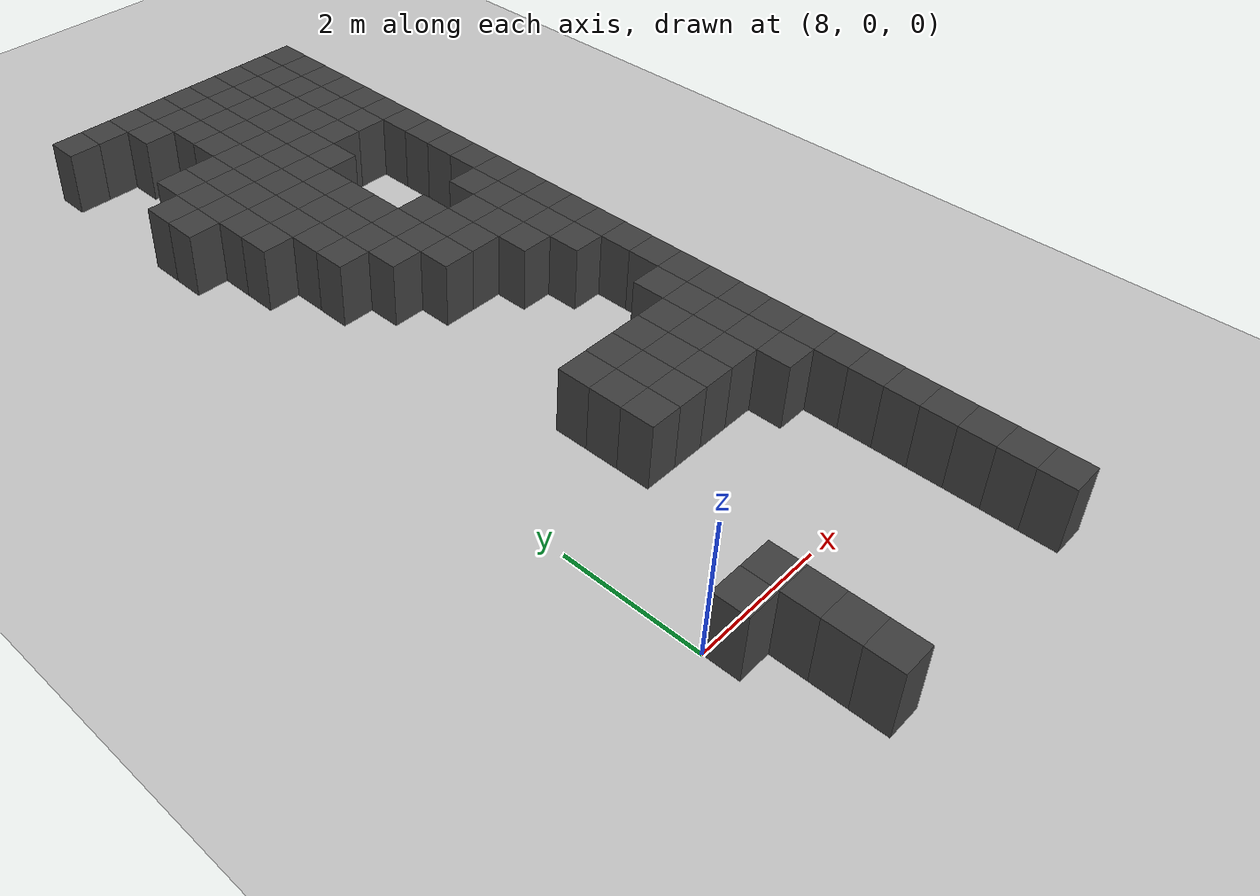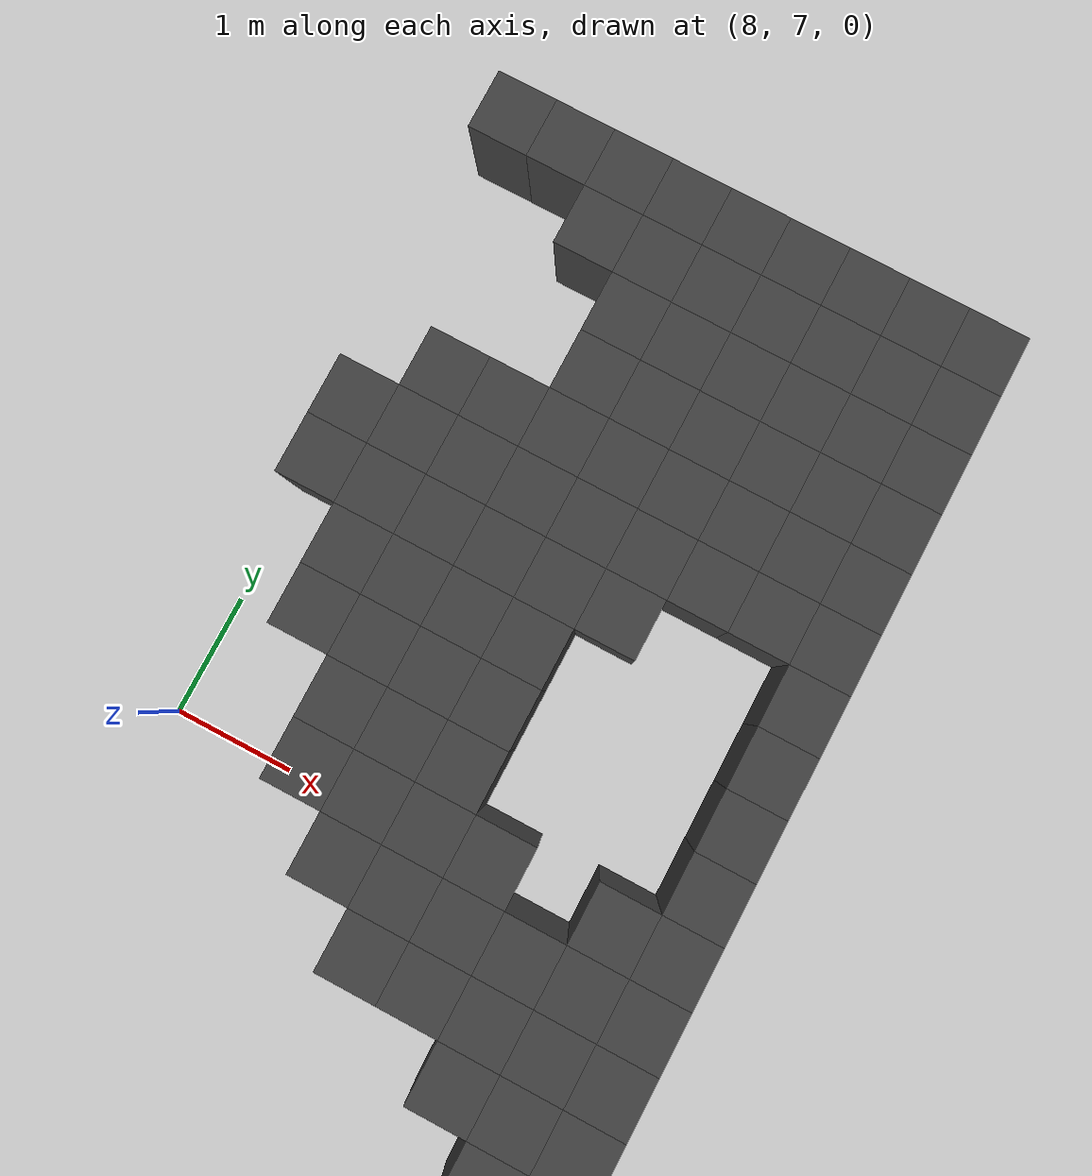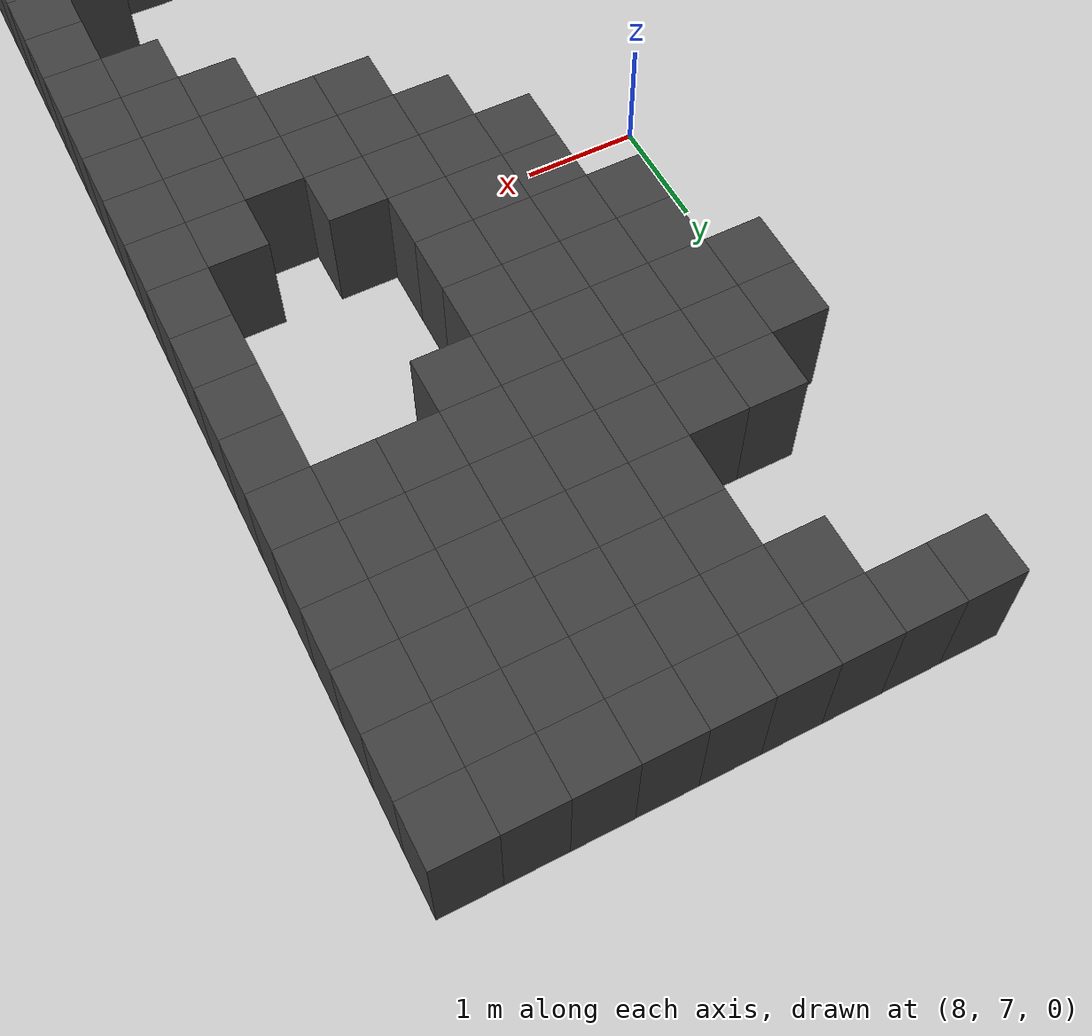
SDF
<sdf version="1.7">
 <world name="map_8382">
  <model name="ground_plane">
   <static>true</static>
   <link name="link">
    <collision name="collision">
     <geometry><plane><normal>0 0 1</normal><size>200 200</size></plane></geometry>
    </collision>
    <visual name="visual">
     <geometry><plane><normal>0 0 1</normal><size>200 200</size></plane></geometry>
     <material><ambient>0.8 0.8 0.8 1</ambient><diffuse>0.8 0.8 0.8 1</diffuse></material>
    </visual>
   </link>
  </model>
  <model name="maze_environment">
   <static>true</static>
   <link name="wall_41">
    <pose>8.250 12.250 0.500 0 0 0</pose>
    <collision name="col"><geometry><box><size>0.5 0.5 1.0</size></box></geometry></collision>
    <visual name="vis">
     <geometry><box><size>0.5 0.5 1.0</size></box></geometry>
     <material><ambient>0.15 0.15 0.15 1</ambient><diffuse>0.25 0.25 0.25 1</diffuse></material>
    </visual>
   </link>
   <link name="wall_42">
    <pose>8.750 12.250 0.500 0 0 0</pose>
    <collision name="col"><geometry><box><size>0.5 0.5 1.0</size></box></geometry></collision>
    <visual name="vis">
     <geometry><box><size>0.5 0.5 1.0</size></box></geometry>
     <material><ambient>0.15 0.15 0.15 1</ambient><diffuse>0.25 0.25 0.25 1</diffuse></material>
    </visual>
   </link>
   <link name="wall_43">
    <pose>9.250 12.250 0.500 0 0 0</pose>
    <collision name="col"><geometry><box><size>0.5 0.5 1.0</size></box></geometry></collision>
    <visual name="vis">
     <geometry><box><size>0.5 0.5 1.0</size></box></geometry>
     <material><ambient>0.15 0.15 0.15 1</ambient><diffuse>0.25 0.25 0.25 1</diffuse></material>
    </visual>
   </link>
   <link name="wall_44">
    <pose>9.750 12.250 0.500 0 0 0</pose>
    <collision name="col"><geometry><box><size>0.5 0.5 1.0</size></box></geometry></collision>
    <visual name="vis">
     <geometry><box><size>0.5 0.5 1.0</size></box></geometry>
     <material><ambient>0.15 0.15 0.15 1</ambient><diffuse>0.25 0.25 0.25 1</diffuse></material>
    </visual>
   </link>
   <link name="wall_45">
    <pose>10.250 12.250 0.500 0 0 0</pose>
    <collision name="col"><geometry><box><size>0.5 0.5 1.0</size></box></geometry></collision>
    <visual name="vis">
     <geometry><box><size>0.5 0.5 1.0</size></box></geometry>
     <material><ambient>0.15 0.15 0.15 1</ambient><diffuse>0.25 0.25 0.25 1</diffuse></material>
    </visual>
   </link>
   <link name="wall_46">
    <pose>10.750 12.250 0.500 0 0 0</pose>
    <collision name="col"><geometry><box><size>0.5 0.5 1.0</size></box></geometry></collision>
    <visual name="vis">
     <geometry><box><size>0.5 0.5 1.0</size></box></geometry>
     <material><ambient>0.15 0.15 0.15 1</ambient><diffuse>0.25 0.25 0.25 1</diffuse></material>
    </visual>
   </link>
   <link name="wall_47">
    <pose>11.250 12.250 0.500 0 0 0</pose>
    <collision name="col"><geometry><box><size>0.5 0.5 1.0</size></box></geometry></collision>
    <visual name="vis">
     <geometry><box><size>0.5 0.5 1.0</size></box></geometry>
     <material><ambient>0.15 0.15 0.15 1</ambient><diffuse>0.25 0.25 0.25 1</diffuse></material>
    </visual>
   </link>
   <link name="wall_48">
    <pose>11.750 12.250 0.500 0 0 0</pose>
    <collision name="col"><geometry><box><size>0.5 0.5 1.0</size></box></geometry></collision>
    <visual name="vis">
     <geometry><box><size>0.5 0.5 1.0</size></box></geometry>
     <material><ambient>0.15 0.15 0.15 1</ambient><diffuse>0.25 0.25 0.25 1</diffuse></material>
    </visual>
   </link>
   <link name="wall_49">
    <pose>12.250 12.250 0.500 0 0 0</pose>
    <collision name="col"><geometry><box><size>0.5 0.5 1.0</size></box></geometry></collision>
    <visual name="vis">
     <geometry><box><size>0.5 0.5 1.0</size></box></geometry>
     <material><ambient>0.15 0.15 0.15 1</ambient><diffuse>0.25 0.25 0.25 1</diffuse></material>
    </visual>
   </link>
   <link name="wall_67">
    <pose>9.250 11.750 0.500 0 0 0</pose>
    <collision name="col"><geometry><box><size>0.5 0.5 1.0</size></box></geometry></collision>
    <visual name="vis">
     <geometry><box><size>0.5 0.5 1.0</size></box></geometry>
     <material><ambient>0.15 0.15 0.15 1</ambient><diffuse>0.25 0.25 0.25 1</diffuse></material>
    </visual>
   </link>
   <link name="wall_68">
    <pose>9.750 11.750 0.500 0 0 0</pose>
    <collision name="col"><geometry><box><size>0.5 0.5 1.0</size></box></geometry></collision>
    <visual name="vis">
     <geometry><box><size>0.5 0.5 1.0</size></box></geometry>
     <material><ambient>0.15 0.15 0.15 1</ambient><diffuse>0.25 0.25 0.25 1</diffuse></material>
    </visual>
   </link>
   <link name="wall_69">
    <pose>10.250 11.750 0.500 0 0 0</pose>
    <collision name="col"><geometry><box><size>0.5 0.5 1.0</size></box></geometry></collision>
    <visual name="vis">
     <geometry><box><size>0.5 0.5 1.0</size></box></geometry>
     <material><ambient>0.15 0.15 0.15 1</ambient><diffuse>0.25 0.25 0.25 1</diffuse></material>
    </visual>
   </link>
   <link name="wall_70">
    <pose>10.750 11.750 0.500 0 0 0</pose>
    <collision name="col"><geometry><box><size>0.5 0.5 1.0</size></box></geometry></collision>
    <visual name="vis">
     <geometry><box><size>0.5 0.5 1.0</size></box></geometry>
     <material><ambient>0.15 0.15 0.15 1</ambient><diffuse>0.25 0.25 0.25 1</diffuse></material>
    </visual>
   </link>
   <link name="wall_71">
    <pose>11.250 11.750 0.500 0 0 0</pose>
    <collision name="col"><geometry><box><size>0.5 0.5 1.0</size></box></geometry></collision>
    <visual name="vis">
     <geometry><box><size>0.5 0.5 1.0</size></box></geometry>
     <material><ambient>0.15 0.15 0.15 1</ambient><diffuse>0.25 0.25 0.25 1</diffuse></material>
    </visual>
   </link>
   <link name="wall_72">
    <pose>11.750 11.750 0.500 0 0 0</pose>
    <collision name="col"><geometry><box><size>0.5 0.5 1.0</size></box></geometry></collision>
    <visual name="vis">
     <geometry><box><size>0.5 0.5 1.0</size></box></geometry>
     <material><ambient>0.15 0.15 0.15 1</ambient><diffuse>0.25 0.25 0.25 1</diffuse></material>
    </visual>
   </link>
   <link name="wall_73">
    <pose>12.250 11.750 0.500 0 0 0</pose>
    <collision name="col"><geometry><box><size>0.5 0.5 1.0</size></box></geometry></collision>
    <visual name="vis">
     <geometry><box><size>0.5 0.5 1.0</size></box></geometry>
     <material><ambient>0.15 0.15 0.15 1</ambient><diffuse>0.25 0.25 0.25 1</diffuse></material>
    </visual>
   </link>
   <link name="wall_83">
    <pose>9.750 11.250 0.500 0 0 0</pose>
    <collision name="col"><geometry><box><size>0.5 0.5 1.0</size></box></geometry></collision>
    <visual name="vis">
     <geometry><box><size>0.5 0.5 1.0</size></box></geometry>
     <material><ambient>0.15 0.15 0.15 1</ambient><diffuse>0.25 0.25 0.25 1</diffuse></material>
    </visual>
   </link>
   <link name="wall_84">
    <pose>10.250 11.250 0.500 0 0 0</pose>
    <collision name="col"><geometry><box><size>0.5 0.5 1.0</size></box></geometry></collision>
    <visual name="vis">
     <geometry><box><size>0.5 0.5 1.0</size></box></geometry>
     <material><ambient>0.15 0.15 0.15 1</ambient><diffuse>0.25 0.25 0.25 1</diffuse></material>
    </visual>
   </link>
   <link name="wall_85">
    <pose>10.750 11.250 0.500 0 0 0</pose>
    <collision name="col"><geometry><box><size>0.5 0.5 1.0</size></box></geometry></collision>
    <visual name="vis">
     <geometry><box><size>0.5 0.5 1.0</size></box></geometry>
     <material><ambient>0.15 0.15 0.15 1</ambient><diffuse>0.25 0.25 0.25 1</diffuse></material>
    </visual>
   </link>
   <link name="wall_86">
    <pose>11.250 11.250 0.500 0 0 0</pose>
    <collision name="col"><geometry><box><size>0.5 0.5 1.0</size></box></geometry></collision>
    <visual name="vis">
     <geometry><box><size>0.5 0.5 1.0</size></box></geometry>
     <material><ambient>0.15 0.15 0.15 1</ambient><diffuse>0.25 0.25 0.25 1</diffuse></material>
    </visual>
   </link>
   <link name="wall_87">
    <pose>11.750 11.250 0.500 0 0 0</pose>
    <collision name="col"><geometry><box><size>0.5 0.5 1.0</size></box></geometry></collision>
    <visual name="vis">
     <geometry><box><size>0.5 0.5 1.0</size></box></geometry>
     <material><ambient>0.15 0.15 0.15 1</ambient><diffuse>0.25 0.25 0.25 1</diffuse></material>
    </visual>
   </link>
   <link name="wall_88">
    <pose>12.250 11.250 0.500 0 0 0</pose>
    <collision name="col"><geometry><box><size>0.5 0.5 1.0</size></box></geometry></collision>
    <visual name="vis">
     <geometry><box><size>0.5 0.5 1.0</size></box></geometry>
     <material><ambient>0.15 0.15 0.15 1</ambient><diffuse>0.25 0.25 0.25 1</diffuse></material>
    </visual>
   </link>
   <link name="wall_95">
    <pose>9.750 10.750 0.500 0 0 0</pose>
    <collision name="col"><geometry><box><size>0.5 0.5 1.0</size></box></geometry></collision>
    <visual name="vis">
     <geometry><box><size>0.5 0.5 1.0</size></box></geometry>
     <material><ambient>0.15 0.15 0.15 1</ambient><diffuse>0.25 0.25 0.25 1</diffuse></material>
    </visual>
   </link>
   <link name="wall_96">
    <pose>10.250 10.750 0.500 0 0 0</pose>
    <collision name="col"><geometry><box><size>0.5 0.5 1.0</size></box></geometry></collision>
    <visual name="vis">
     <geometry><box><size>0.5 0.5 1.0</size></box></geometry>
     <material><ambient>0.15 0.15 0.15 1</ambient><diffuse>0.25 0.25 0.25 1</diffuse></material>
    </visual>
   </link>
   <link name="wall_97">
    <pose>10.750 10.750 0.500 0 0 0</pose>
    <collision name="col"><geometry><box><size>0.5 0.5 1.0</size></box></geometry></collision>
    <visual name="vis">
     <geometry><box><size>0.5 0.5 1.0</size></box></geometry>
     <material><ambient>0.15 0.15 0.15 1</ambient><diffuse>0.25 0.25 0.25 1</diffuse></material>
    </visual>
   </link>
   <link name="wall_98">
    <pose>11.250 10.750 0.500 0 0 0</pose>
    <collision name="col"><geometry><box><size>0.5 0.5 1.0</size></box></geometry></collision>
    <visual name="vis">
     <geometry><box><size>0.5 0.5 1.0</size></box></geometry>
     <material><ambient>0.15 0.15 0.15 1</ambient><diffuse>0.25 0.25 0.25 1</diffuse></material>
    </visual>
   </link>
   <link name="wall_99">
    <pose>11.750 10.750 0.500 0 0 0</pose>
    <collision name="col"><geometry><box><size>0.5 0.5 1.0</size></box></geometry></collision>
    <visual name="vis">
     <geometry><box><size>0.5 0.5 1.0</size></box></geometry>
     <material><ambient>0.15 0.15 0.15 1</ambient><diffuse>0.25 0.25 0.25 1</diffuse></material>
    </visual>
   </link>
   <link name="wall_100">
    <pose>12.250 10.750 0.500 0 0 0</pose>
    <collision name="col"><geometry><box><size>0.5 0.5 1.0</size></box></geometry></collision>
    <visual name="vis">
     <geometry><box><size>0.5 0.5 1.0</size></box></geometry>
     <material><ambient>0.15 0.15 0.15 1</ambient><diffuse>0.25 0.25 0.25 1</diffuse></material>
    </visual>
   </link>
   <link name="wall_106">
    <pose>8.750 10.250 0.500 0 0 0</pose>
    <collision name="col"><geometry><box><size>0.5 0.5 1.0</size></box></geometry></collision>
    <visual name="vis">
     <geometry><box><size>0.5 0.5 1.0</size></box></geometry>
     <material><ambient>0.15 0.15 0.15 1</ambient><diffuse>0.25 0.25 0.25 1</diffuse></material>
    </visual>
   </link>
   <link name="wall_107">
    <pose>9.250 10.250 0.500 0 0 0</pose>
    <collision name="col"><geometry><box><size>0.5 0.5 1.0</size></box></geometry></collision>
    <visual name="vis">
     <geometry><box><size>0.5 0.5 1.0</size></box></geometry>
     <material><ambient>0.15 0.15 0.15 1</ambient><diffuse>0.25 0.25 0.25 1</diffuse></material>
    </visual>
   </link>
   <link name="wall_108">
    <pose>9.750 10.250 0.500 0 0 0</pose>
    <collision name="col"><geometry><box><size>0.5 0.5 1.0</size></box></geometry></collision>
    <visual name="vis">
     <geometry><box><size>0.5 0.5 1.0</size></box></geometry>
     <material><ambient>0.15 0.15 0.15 1</ambient><diffuse>0.25 0.25 0.25 1</diffuse></material>
    </visual>
   </link>
   <link name="wall_109">
    <pose>10.250 10.250 0.500 0 0 0</pose>
    <collision name="col"><geometry><box><size>0.5 0.5 1.0</size></box></geometry></collision>
    <visual name="vis">
     <geometry><box><size>0.5 0.5 1.0</size></box></geometry>
     <material><ambient>0.15 0.15 0.15 1</ambient><diffuse>0.25 0.25 0.25 1</diffuse></material>
    </visual>
   </link>
   <link name="wall_110">
    <pose>10.750 10.250 0.500 0 0 0</pose>
    <collision name="col"><geometry><box><size>0.5 0.5 1.0</size></box></geometry></collision>
    <visual name="vis">
     <geometry><box><size>0.5 0.5 1.0</size></box></geometry>
     <material><ambient>0.15 0.15 0.15 1</ambient><diffuse>0.25 0.25 0.25 1</diffuse></material>
    </visual>
   </link>
   <link name="wall_111">
    <pose>11.250 10.250 0.500 0 0 0</pose>
    <collision name="col"><geometry><box><size>0.5 0.5 1.0</size></box></geometry></collision>
    <visual name="vis">
     <geometry><box><size>0.5 0.5 1.0</size></box></geometry>
     <material><ambient>0.15 0.15 0.15 1</ambient><diffuse>0.25 0.25 0.25 1</diffuse></material>
    </visual>
   </link>
   <link name="wall_112">
    <pose>11.750 10.250 0.500 0 0 0</pose>
    <collision name="col"><geometry><box><size>0.5 0.5 1.0</size></box></geometry></collision>
    <visual name="vis">
     <geometry><box><size>0.5 0.5 1.0</size></box></geometry>
     <material><ambient>0.15 0.15 0.15 1</ambient><diffuse>0.25 0.25 0.25 1</diffuse></material>
    </visual>
   </link>
   <link name="wall_113">
    <pose>12.250 10.250 0.500 0 0 0</pose>
    <collision name="col"><geometry><box><size>0.5 0.5 1.0</size></box></geometry></collision>
    <visual name="vis">
     <geometry><box><size>0.5 0.5 1.0</size></box></geometry>
     <material><ambient>0.15 0.15 0.15 1</ambient><diffuse>0.25 0.25 0.25 1</diffuse></material>
    </visual>
   </link>
   <link name="wall_121">
    <pose>8.250 9.750 0.500 0 0 0</pose>
    <collision name="col"><geometry><box><size>0.5 0.5 1.0</size></box></geometry></collision>
    <visual name="vis">
     <geometry><box><size>0.5 0.5 1.0</size></box></geometry>
     <material><ambient>0.15 0.15 0.15 1</ambient><diffuse>0.25 0.25 0.25 1</diffuse></material>
    </visual>
   </link>
   <link name="wall_122">
    <pose>8.750 9.750 0.500 0 0 0</pose>
    <collision name="col"><geometry><box><size>0.5 0.5 1.0</size></box></geometry></collision>
    <visual name="vis">
     <geometry><box><size>0.5 0.5 1.0</size></box></geometry>
     <material><ambient>0.15 0.15 0.15 1</ambient><diffuse>0.25 0.25 0.25 1</diffuse></material>
    </visual>
   </link>
   <link name="wall_123">
    <pose>9.250 9.750 0.500 0 0 0</pose>
    <collision name="col"><geometry><box><size>0.5 0.5 1.0</size></box></geometry></collision>
    <visual name="vis">
     <geometry><box><size>0.5 0.5 1.0</size></box></geometry>
     <material><ambient>0.15 0.15 0.15 1</ambient><diffuse>0.25 0.25 0.25 1</diffuse></material>
    </visual>
   </link>
   <link name="wall_124">
    <pose>9.750 9.750 0.500 0 0 0</pose>
    <collision name="col"><geometry><box><size>0.5 0.5 1.0</size></box></geometry></collision>
    <visual name="vis">
     <geometry><box><size>0.5 0.5 1.0</size></box></geometry>
     <material><ambient>0.15 0.15 0.15 1</ambient><diffuse>0.25 0.25 0.25 1</diffuse></material>
    </visual>
   </link>
   <link name="wall_125">
    <pose>10.250 9.750 0.500 0 0 0</pose>
    <collision name="col"><geometry><box><size>0.5 0.5 1.0</size></box></geometry></collision>
    <visual name="vis">
     <geometry><box><size>0.5 0.5 1.0</size></box></geometry>
     <material><ambient>0.15 0.15 0.15 1</ambient><diffuse>0.25 0.25 0.25 1</diffuse></material>
    </visual>
   </link>
   <link name="wall_126">
    <pose>10.750 9.750 0.500 0 0 0</pose>
    <collision name="col"><geometry><box><size>0.5 0.5 1.0</size></box></geometry></collision>
    <visual name="vis">
     <geometry><box><size>0.5 0.5 1.0</size></box></geometry>
     <material><ambient>0.15 0.15 0.15 1</ambient><diffuse>0.25 0.25 0.25 1</diffuse></material>
    </visual>
   </link>
   <link name="wall_127">
    <pose>11.250 9.750 0.500 0 0 0</pose>
    <collision name="col"><geometry><box><size>0.5 0.5 1.0</size></box></geometry></collision>
    <visual name="vis">
     <geometry><box><size>0.5 0.5 1.0</size></box></geometry>
     <material><ambient>0.15 0.15 0.15 1</ambient><diffuse>0.25 0.25 0.25 1</diffuse></material>
    </visual>
   </link>
   <link name="wall_128">
    <pose>11.750 9.750 0.500 0 0 0</pose>
    <collision name="col"><geometry><box><size>0.5 0.5 1.0</size></box></geometry></collision>
    <visual name="vis">
     <geometry><box><size>0.5 0.5 1.0</size></box></geometry>
     <material><ambient>0.15 0.15 0.15 1</ambient><diffuse>0.25 0.25 0.25 1</diffuse></material>
    </visual>
   </link>
   <link name="wall_129">
    <pose>12.250 9.750 0.500 0 0 0</pose>
    <collision name="col"><geometry><box><size>0.5 0.5 1.0</size></box></geometry></collision>
    <visual name="vis">
     <geometry><box><size>0.5 0.5 1.0</size></box></geometry>
     <material><ambient>0.15 0.15 0.15 1</ambient><diffuse>0.25 0.25 0.25 1</diffuse></material>
    </visual>
   </link>
   <link name="wall_140">
    <pose>8.250 9.250 0.500 0 0 0</pose>
    <collision name="col"><geometry><box><size>0.5 0.5 1.0</size></box></geometry></collision>
    <visual name="vis">
     <geometry><box><size>0.5 0.5 1.0</size></box></geometry>
     <material><ambient>0.15 0.15 0.15 1</ambient><diffuse>0.25 0.25 0.25 1</diffuse></material>
    </visual>
   </link>
   <link name="wall_141">
    <pose>8.750 9.250 0.500 0 0 0</pose>
    <collision name="col"><geometry><box><size>0.5 0.5 1.0</size></box></geometry></collision>
    <visual name="vis">
     <geometry><box><size>0.5 0.5 1.0</size></box></geometry>
     <material><ambient>0.15 0.15 0.15 1</ambient><diffuse>0.25 0.25 0.25 1</diffuse></material>
    </visual>
   </link>
   <link name="wall_142">
    <pose>9.250 9.250 0.500 0 0 0</pose>
    <collision name="col"><geometry><box><size>0.5 0.5 1.0</size></box></geometry></collision>
    <visual name="vis">
     <geometry><box><size>0.5 0.5 1.0</size></box></geometry>
     <material><ambient>0.15 0.15 0.15 1</ambient><diffuse>0.25 0.25 0.25 1</diffuse></material>
    </visual>
   </link>
   <link name="wall_143">
    <pose>9.750 9.250 0.500 0 0 0</pose>
    <collision name="col"><geometry><box><size>0.5 0.5 1.0</size></box></geometry></collision>
    <visual name="vis">
     <geometry><box><size>0.5 0.5 1.0</size></box></geometry>
     <material><ambient>0.15 0.15 0.15 1</ambient><diffuse>0.25 0.25 0.25 1</diffuse></material>
    </visual>
   </link>
   <link name="wall_144">
    <pose>10.250 9.250 0.500 0 0 0</pose>
    <collision name="col"><geometry><box><size>0.5 0.5 1.0</size></box></geometry></collision>
    <visual name="vis">
     <geometry><box><size>0.5 0.5 1.0</size></box></geometry>
     <material><ambient>0.15 0.15 0.15 1</ambient><diffuse>0.25 0.25 0.25 1</diffuse></material>
    </visual>
   </link>
   <link name="wall_145">
    <pose>10.750 9.250 0.500 0 0 0</pose>
    <collision name="col"><geometry><box><size>0.5 0.5 1.0</size></box></geometry></collision>
    <visual name="vis">
     <geometry><box><size>0.5 0.5 1.0</size></box></geometry>
     <material><ambient>0.15 0.15 0.15 1</ambient><diffuse>0.25 0.25 0.25 1</diffuse></material>
    </visual>
   </link>
   <link name="wall_146">
    <pose>12.250 9.250 0.500 0 0 0</pose>
    <collision name="col"><geometry><box><size>0.5 0.5 1.0</size></box></geometry></collision>
    <visual name="vis">
     <geometry><box><size>0.5 0.5 1.0</size></box></geometry>
     <material><ambient>0.15 0.15 0.15 1</ambient><diffuse>0.25 0.25 0.25 1</diffuse></material>
    </visual>
   </link>
   <link name="wall_159">
    <pose>8.750 8.750 0.500 0 0 0</pose>
    <collision name="col"><geometry><box><size>0.5 0.5 1.0</size></box></geometry></collision>
    <visual name="vis">
     <geometry><box><size>0.5 0.5 1.0</size></box></geometry>
     <material><ambient>0.15 0.15 0.15 1</ambient><diffuse>0.25 0.25 0.25 1</diffuse></material>
    </visual>
   </link>
   <link name="wall_160">
    <pose>9.250 8.750 0.500 0 0 0</pose>
    <collision name="col"><geometry><box><size>0.5 0.5 1.0</size></box></geometry></collision>
    <visual name="vis">
     <geometry><box><size>0.5 0.5 1.0</size></box></geometry>
     <material><ambient>0.15 0.15 0.15 1</ambient><diffuse>0.25 0.25 0.25 1</diffuse></material>
    </visual>
   </link>
   <link name="wall_161">
    <pose>9.750 8.750 0.500 0 0 0</pose>
    <collision name="col"><geometry><box><size>0.5 0.5 1.0</size></box></geometry></collision>
    <visual name="vis">
     <geometry><box><size>0.5 0.5 1.0</size></box></geometry>
     <material><ambient>0.15 0.15 0.15 1</ambient><diffuse>0.25 0.25 0.25 1</diffuse></material>
    </visual>
   </link>
   <link name="wall_162">
    <pose>10.250 8.750 0.500 0 0 0</pose>
    <collision name="col"><geometry><box><size>0.5 0.5 1.0</size></box></geometry></collision>
    <visual name="vis">
     <geometry><box><size>0.5 0.5 1.0</size></box></geometry>
     <material><ambient>0.15 0.15 0.15 1</ambient><diffuse>0.25 0.25 0.25 1</diffuse></material>
    </visual>
   </link>
   <link name="wall_163">
    <pose>12.250 8.750 0.500 0 0 0</pose>
    <collision name="col"><geometry><box><size>0.5 0.5 1.0</size></box></geometry></collision>
    <visual name="vis">
     <geometry><box><size>0.5 0.5 1.0</size></box></geometry>
     <material><ambient>0.15 0.15 0.15 1</ambient><diffuse>0.25 0.25 0.25 1</diffuse></material>
    </visual>
   </link>
   <link name="wall_174">
    <pose>8.750 8.250 0.500 0 0 0</pose>
    <collision name="col"><geometry><box><size>0.5 0.5 1.0</size></box></geometry></collision>
    <visual name="vis">
     <geometry><box><size>0.5 0.5 1.0</size></box></geometry>
     <material><ambient>0.15 0.15 0.15 1</ambient><diffuse>0.25 0.25 0.25 1</diffuse></material>
    </visual>
   </link>
   <link name="wall_175">
    <pose>9.250 8.250 0.500 0 0 0</pose>
    <collision name="col"><geometry><box><size>0.5 0.5 1.0</size></box></geometry></collision>
    <visual name="vis">
     <geometry><box><size>0.5 0.5 1.0</size></box></geometry>
     <material><ambient>0.15 0.15 0.15 1</ambient><diffuse>0.25 0.25 0.25 1</diffuse></material>
    </visual>
   </link>
   <link name="wall_176">
    <pose>9.750 8.250 0.500 0 0 0</pose>
    <collision name="col"><geometry><box><size>0.5 0.5 1.0</size></box></geometry></collision>
    <visual name="vis">
     <geometry><box><size>0.5 0.5 1.0</size></box></geometry>
     <material><ambient>0.15 0.15 0.15 1</ambient><diffuse>0.25 0.25 0.25 1</diffuse></material>
    </visual>
   </link>
   <link name="wall_177">
    <pose>10.250 8.250 0.500 0 0 0</pose>
    <collision name="col"><geometry><box><size>0.5 0.5 1.0</size></box></geometry></collision>
    <visual name="vis">
     <geometry><box><size>0.5 0.5 1.0</size></box></geometry>
     <material><ambient>0.15 0.15 0.15 1</ambient><diffuse>0.25 0.25 0.25 1</diffuse></material>
    </visual>
   </link>
   <link name="wall_178">
    <pose>12.250 8.250 0.500 0 0 0</pose>
    <collision name="col"><geometry><box><size>0.5 0.5 1.0</size></box></geometry></collision>
    <visual name="vis">
     <geometry><box><size>0.5 0.5 1.0</size></box></geometry>
     <material><ambient>0.15 0.15 0.15 1</ambient><diffuse>0.25 0.25 0.25 1</diffuse></material>
    </visual>
   </link>
   <link name="wall_191">
    <pose>9.250 7.750 0.500 0 0 0</pose>
    <collision name="col"><geometry><box><size>0.5 0.5 1.0</size></box></geometry></collision>
    <visual name="vis">
     <geometry><box><size>0.5 0.5 1.0</size></box></geometry>
     <material><ambient>0.15 0.15 0.15 1</ambient><diffuse>0.25 0.25 0.25 1</diffuse></material>
    </visual>
   </link>
   <link name="wall_192">
    <pose>9.750 7.750 0.500 0 0 0</pose>
    <collision name="col"><geometry><box><size>0.5 0.5 1.0</size></box></geometry></collision>
    <visual name="vis">
     <geometry><box><size>0.5 0.5 1.0</size></box></geometry>
     <material><ambient>0.15 0.15 0.15 1</ambient><diffuse>0.25 0.25 0.25 1</diffuse></material>
    </visual>
   </link>
   <link name="wall_193">
    <pose>10.250 7.750 0.500 0 0 0</pose>
    <collision name="col"><geometry><box><size>0.5 0.5 1.0</size></box></geometry></collision>
    <visual name="vis">
     <geometry><box><size>0.5 0.5 1.0</size></box></geometry>
     <material><ambient>0.15 0.15 0.15 1</ambient><diffuse>0.25 0.25 0.25 1</diffuse></material>
    </visual>
   </link>
   <link name="wall_194">
    <pose>12.250 7.750 0.500 0 0 0</pose>
    <collision name="col"><geometry><box><size>0.5 0.5 1.0</size></box></geometry></collision>
    <visual name="vis">
     <geometry><box><size>0.5 0.5 1.0</size></box></geometry>
     <material><ambient>0.15 0.15 0.15 1</ambient><diffuse>0.25 0.25 0.25 1</diffuse></material>
    </visual>
   </link>
   <link name="wall_213">
    <pose>9.250 7.250 0.500 0 0 0</pose>
    <collision name="col"><geometry><box><size>0.5 0.5 1.0</size></box></geometry></collision>
    <visual name="vis">
     <geometry><box><size>0.5 0.5 1.0</size></box></geometry>
     <material><ambient>0.15 0.15 0.15 1</ambient><diffuse>0.25 0.25 0.25 1</diffuse></material>
    </visual>
   </link>
   <link name="wall_214">
    <pose>9.750 7.250 0.500 0 0 0</pose>
    <collision name="col"><geometry><box><size>0.5 0.5 1.0</size></box></geometry></collision>
    <visual name="vis">
     <geometry><box><size>0.5 0.5 1.0</size></box></geometry>
     <material><ambient>0.15 0.15 0.15 1</ambient><diffuse>0.25 0.25 0.25 1</diffuse></material>
    </visual>
   </link>
   <link name="wall_215">
    <pose>10.250 7.250 0.500 0 0 0</pose>
    <collision name="col"><geometry><box><size>0.5 0.5 1.0</size></box></geometry></collision>
    <visual name="vis">
     <geometry><box><size>0.5 0.5 1.0</size></box></geometry>
     <material><ambient>0.15 0.15 0.15 1</ambient><diffuse>0.25 0.25 0.25 1</diffuse></material>
    </visual>
   </link>
   <link name="wall_216">
    <pose>10.750 7.250 0.500 0 0 0</pose>
    <collision name="col"><geometry><box><size>0.5 0.5 1.0</size></box></geometry></collision>
    <visual name="vis">
     <geometry><box><size>0.5 0.5 1.0</size></box></geometry>
     <material><ambient>0.15 0.15 0.15 1</ambient><diffuse>0.25 0.25 0.25 1</diffuse></material>
    </visual>
   </link>
   <link name="wall_217">
    <pose>11.750 7.250 0.500 0 0 0</pose>
    <collision name="col"><geometry><box><size>0.5 0.5 1.0</size></box></geometry></collision>
    <visual name="vis">
     <geometry><box><size>0.5 0.5 1.0</size></box></geometry>
     <material><ambient>0.15 0.15 0.15 1</ambient><diffuse>0.25 0.25 0.25 1</diffuse></material>
    </visual>
   </link>
   <link name="wall_218">
    <pose>12.250 7.250 0.500 0 0 0</pose>
    <collision name="col"><geometry><box><size>0.5 0.5 1.0</size></box></geometry></collision>
    <visual name="vis">
     <geometry><box><size>0.5 0.5 1.0</size></box></geometry>
     <material><ambient>0.15 0.15 0.15 1</ambient><diffuse>0.25 0.25 0.25 1</diffuse></material>
    </visual>
   </link>
   <link name="wall_235">
    <pose>9.750 6.750 0.500 0 0 0</pose>
    <collision name="col"><geometry><box><size>0.5 0.5 1.0</size></box></geometry></collision>
    <visual name="vis">
     <geometry><box><size>0.5 0.5 1.0</size></box></geometry>
     <material><ambient>0.15 0.15 0.15 1</ambient><diffuse>0.25 0.25 0.25 1</diffuse></material>
    </visual>
   </link>
   <link name="wall_236">
    <pose>10.250 6.750 0.500 0 0 0</pose>
    <collision name="col"><geometry><box><size>0.5 0.5 1.0</size></box></geometry></collision>
    <visual name="vis">
     <geometry><box><size>0.5 0.5 1.0</size></box></geometry>
     <material><ambient>0.15 0.15 0.15 1</ambient><diffuse>0.25 0.25 0.25 1</diffuse></material>
    </visual>
   </link>
   <link name="wall_237">
    <pose>10.750 6.750 0.500 0 0 0</pose>
    <collision name="col"><geometry><box><size>0.5 0.5 1.0</size></box></geometry></collision>
    <visual name="vis">
     <geometry><box><size>0.5 0.5 1.0</size></box></geometry>
     <material><ambient>0.15 0.15 0.15 1</ambient><diffuse>0.25 0.25 0.25 1</diffuse></material>
    </visual>
   </link>
   <link name="wall_238">
    <pose>11.250 6.750 0.500 0 0 0</pose>
    <collision name="col"><geometry><box><size>0.5 0.5 1.0</size></box></geometry></collision>
    <visual name="vis">
     <geometry><box><size>0.5 0.5 1.0</size></box></geometry>
     <material><ambient>0.15 0.15 0.15 1</ambient><diffuse>0.25 0.25 0.25 1</diffuse></material>
    </visual>
   </link>
   <link name="wall_239">
    <pose>11.750 6.750 0.500 0 0 0</pose>
    <collision name="col"><geometry><box><size>0.5 0.5 1.0</size></box></geometry></collision>
    <visual name="vis">
     <geometry><box><size>0.5 0.5 1.0</size></box></geometry>
     <material><ambient>0.15 0.15 0.15 1</ambient><diffuse>0.25 0.25 0.25 1</diffuse></material>
    </visual>
   </link>
   <link name="wall_240">
    <pose>12.250 6.750 0.500 0 0 0</pose>
    <collision name="col"><geometry><box><size>0.5 0.5 1.0</size></box></geometry></collision>
    <visual name="vis">
     <geometry><box><size>0.5 0.5 1.0</size></box></geometry>
     <material><ambient>0.15 0.15 0.15 1</ambient><diffuse>0.25 0.25 0.25 1</diffuse></material>
    </visual>
   </link>
   <link name="wall_254">
    <pose>10.250 6.250 0.500 0 0 0</pose>
    <collision name="col"><geometry><box><size>0.5 0.5 1.0</size></box></geometry></collision>
    <visual name="vis">
     <geometry><box><size>0.5 0.5 1.0</size></box></geometry>
     <material><ambient>0.15 0.15 0.15 1</ambient><diffuse>0.25 0.25 0.25 1</diffuse></material>
    </visual>
   </link>
   <link name="wall_255">
    <pose>10.750 6.250 0.500 0 0 0</pose>
    <collision name="col"><geometry><box><size>0.5 0.5 1.0</size></box></geometry></collision>
    <visual name="vis">
     <geometry><box><size>0.5 0.5 1.0</size></box></geometry>
     <material><ambient>0.15 0.15 0.15 1</ambient><diffuse>0.25 0.25 0.25 1</diffuse></material>
    </visual>
   </link>
   <link name="wall_256">
    <pose>11.250 6.250 0.500 0 0 0</pose>
    <collision name="col"><geometry><box><size>0.5 0.5 1.0</size></box></geometry></collision>
    <visual name="vis">
     <geometry><box><size>0.5 0.5 1.0</size></box></geometry>
     <material><ambient>0.15 0.15 0.15 1</ambient><diffuse>0.25 0.25 0.25 1</diffuse></material>
    </visual>
   </link>
   <link name="wall_257">
    <pose>11.750 6.250 0.500 0 0 0</pose>
    <collision name="col"><geometry><box><size>0.5 0.5 1.0</size></box></geometry></collision>
    <visual name="vis">
     <geometry><box><size>0.5 0.5 1.0</size></box></geometry>
     <material><ambient>0.15 0.15 0.15 1</ambient><diffuse>0.25 0.25 0.25 1</diffuse></material>
    </visual>
   </link>
   <link name="wall_258">
    <pose>12.250 6.250 0.500 0 0 0</pose>
    <collision name="col"><geometry><box><size>0.5 0.5 1.0</size></box></geometry></collision>
    <visual name="vis">
     <geometry><box><size>0.5 0.5 1.0</size></box></geometry>
     <material><ambient>0.15 0.15 0.15 1</ambient><diffuse>0.25 0.25 0.25 1</diffuse></material>
    </visual>
   </link>
   <link name="wall_264">
    <pose>11.250 5.750 0.500 0 0 0</pose>
    <collision name="col"><geometry><box><size>0.5 0.5 1.0</size></box></geometry></collision>
    <visual name="vis">
     <geometry><box><size>0.5 0.5 1.0</size></box></geometry>
     <material><ambient>0.15 0.15 0.15 1</ambient><diffuse>0.25 0.25 0.25 1</diffuse></material>
    </visual>
   </link>
   <link name="wall_265">
    <pose>11.750 5.750 0.500 0 0 0</pose>
    <collision name="col"><geometry><box><size>0.5 0.5 1.0</size></box></geometry></collision>
    <visual name="vis">
     <geometry><box><size>0.5 0.5 1.0</size></box></geometry>
     <material><ambient>0.15 0.15 0.15 1</ambient><diffuse>0.25 0.25 0.25 1</diffuse></material>
    </visual>
   </link>
   <link name="wall_266">
    <pose>12.250 5.750 0.500 0 0 0</pose>
    <collision name="col"><geometry><box><size>0.5 0.5 1.0</size></box></geometry></collision>
    <visual name="vis">
     <geometry><box><size>0.5 0.5 1.0</size></box></geometry>
     <material><ambient>0.15 0.15 0.15 1</ambient><diffuse>0.25 0.25 0.25 1</diffuse></material>
    </visual>
   </link>
   <link name="wall_274">
    <pose>11.750 5.250 0.500 0 0 0</pose>
    <collision name="col"><geometry><box><size>0.5 0.5 1.0</size></box></geometry></collision>
    <visual name="vis">
     <geometry><box><size>0.5 0.5 1.0</size></box></geometry>
     <material><ambient>0.15 0.15 0.15 1</ambient><diffuse>0.25 0.25 0.25 1</diffuse></material>
    </visual>
   </link>
   <link name="wall_275">
    <pose>12.250 5.250 0.500 0 0 0</pose>
    <collision name="col"><geometry><box><size>0.5 0.5 1.0</size></box></geometry></collision>
    <visual name="vis">
     <geometry><box><size>0.5 0.5 1.0</size></box></geometry>
     <material><ambient>0.15 0.15 0.15 1</ambient><diffuse>0.25 0.25 0.25 1</diffuse></material>
    </visual>
   </link>
   <link name="wall_286">
    <pose>12.250 4.750 0.500 0 0 0</pose>
    <collision name="col"><geometry><box><size>0.5 0.5 1.0</size></box></geometry></collision>
    <visual name="vis">
     <geometry><box><size>0.5 0.5 1.0</size></box></geometry>
     <material><ambient>0.15 0.15 0.15 1</ambient><diffuse>0.25 0.25 0.25 1</diffuse></material>
    </visual>
   </link>
   <link name="wall_297">
    <pose>12.250 4.250 0.500 0 0 0</pose>
    <collision name="col"><geometry><box><size>0.5 0.5 1.0</size></box></geometry></collision>
    <visual name="vis">
     <geometry><box><size>0.5 0.5 1.0</size></box></geometry>
     <material><ambient>0.15 0.15 0.15 1</ambient><diffuse>0.25 0.25 0.25 1</diffuse></material>
    </visual>
   </link>
   <link name="wall_304">
    <pose>11.750 3.750 0.500 0 0 0</pose>
    <collision name="col"><geometry><box><size>0.5 0.5 1.0</size></box></geometry></collision>
    <visual name="vis">
     <geometry><box><size>0.5 0.5 1.0</size></box></geometry>
     <material><ambient>0.15 0.15 0.15 1</ambient><diffuse>0.25 0.25 0.25 1</diffuse></material>
    </visual>
   </link>
   <link name="wall_305">
    <pose>12.250 3.750 0.500 0 0 0</pose>
    <collision name="col"><geometry><box><size>0.5 0.5 1.0</size></box></geometry></collision>
    <visual name="vis">
     <geometry><box><size>0.5 0.5 1.0</size></box></geometry>
     <material><ambient>0.15 0.15 0.15 1</ambient><diffuse>0.25 0.25 0.25 1</diffuse></material>
    </visual>
   </link>
   <link name="wall_308">
    <pose>9.750 3.250 0.500 0 0 0</pose>
    <collision name="col"><geometry><box><size>0.5 0.5 1.0</size></box></geometry></collision>
    <visual name="vis">
     <geometry><box><size>0.5 0.5 1.0</size></box></geometry>
     <material><ambient>0.15 0.15 0.15 1</ambient><diffuse>0.25 0.25 0.25 1</diffuse></material>
    </visual>
   </link>
   <link name="wall_309">
    <pose>10.250 3.250 0.500 0 0 0</pose>
    <collision name="col"><geometry><box><size>0.5 0.5 1.0</size></box></geometry></collision>
    <visual name="vis">
     <geometry><box><size>0.5 0.5 1.0</size></box></geometry>
     <material><ambient>0.15 0.15 0.15 1</ambient><diffuse>0.25 0.25 0.25 1</diffuse></material>
    </visual>
   </link>
   <link name="wall_310">
    <pose>10.750 3.250 0.500 0 0 0</pose>
    <collision name="col"><geometry><box><size>0.5 0.5 1.0</size></box></geometry></collision>
    <visual name="vis">
     <geometry><box><size>0.5 0.5 1.0</size></box></geometry>
     <material><ambient>0.15 0.15 0.15 1</ambient><diffuse>0.25 0.25 0.25 1</diffuse></material>
    </visual>
   </link>
   <link name="wall_311">
    <pose>11.250 3.250 0.500 0 0 0</pose>
    <collision name="col"><geometry><box><size>0.5 0.5 1.0</size></box></geometry></collision>
    <visual name="vis">
     <geometry><box><size>0.5 0.5 1.0</size></box></geometry>
     <material><ambient>0.15 0.15 0.15 1</ambient><diffuse>0.25 0.25 0.25 1</diffuse></material>
    </visual>
   </link>
   <link name="wall_312">
    <pose>11.750 3.250 0.500 0 0 0</pose>
    <collision name="col"><geometry><box><size>0.5 0.5 1.0</size></box></geometry></collision>
    <visual name="vis">
     <geometry><box><size>0.5 0.5 1.0</size></box></geometry>
     <material><ambient>0.15 0.15 0.15 1</ambient><diffuse>0.25 0.25 0.25 1</diffuse></material>
    </visual>
   </link>
   <link name="wall_313">
    <pose>12.250 3.250 0.500 0 0 0</pose>
    <collision name="col"><geometry><box><size>0.5 0.5 1.0</size></box></geometry></collision>
    <visual name="vis">
     <geometry><box><size>0.5 0.5 1.0</size></box></geometry>
     <material><ambient>0.15 0.15 0.15 1</ambient><diffuse>0.25 0.25 0.25 1</diffuse></material>
    </visual>
   </link>
   <link name="wall_316">
    <pose>9.750 2.750 0.500 0 0 0</pose>
    <collision name="col"><geometry><box><size>0.5 0.5 1.0</size></box></geometry></collision>
    <visual name="vis">
     <geometry><box><size>0.5 0.5 1.0</size></box></geometry>
     <material><ambient>0.15 0.15 0.15 1</ambient><diffuse>0.25 0.25 0.25 1</diffuse></material>
    </visual>
   </link>
   <link name="wall_317">
    <pose>10.250 2.750 0.500 0 0 0</pose>
    <collision name="col"><geometry><box><size>0.5 0.5 1.0</size></box></geometry></collision>
    <visual name="vis">
     <geometry><box><size>0.5 0.5 1.0</size></box></geometry>
     <material><ambient>0.15 0.15 0.15 1</ambient><diffuse>0.25 0.25 0.25 1</diffuse></material>
    </visual>
   </link>
   <link name="wall_318">
    <pose>10.750 2.750 0.500 0 0 0</pose>
    <collision name="col"><geometry><box><size>0.5 0.5 1.0</size></box></geometry></collision>
    <visual name="vis">
     <geometry><box><size>0.5 0.5 1.0</size></box></geometry>
     <material><ambient>0.15 0.15 0.15 1</ambient><diffuse>0.25 0.25 0.25 1</diffuse></material>
    </visual>
   </link>
   <link name="wall_319">
    <pose>11.250 2.750 0.500 0 0 0</pose>
    <collision name="col"><geometry><box><size>0.5 0.5 1.0</size></box></geometry></collision>
    <visual name="vis">
     <geometry><box><size>0.5 0.5 1.0</size></box></geometry>
     <material><ambient>0.15 0.15 0.15 1</ambient><diffuse>0.25 0.25 0.25 1</diffuse></material>
    </visual>
   </link>
   <link name="wall_320">
    <pose>11.750 2.750 0.500 0 0 0</pose>
    <collision name="col"><geometry><box><size>0.5 0.5 1.0</size></box></geometry></collision>
    <visual name="vis">
     <geometry><box><size>0.5 0.5 1.0</size></box></geometry>
     <material><ambient>0.15 0.15 0.15 1</ambient><diffuse>0.25 0.25 0.25 1</diffuse></material>
    </visual>
   </link>
   <link name="wall_321">
    <pose>12.250 2.750 0.500 0 0 0</pose>
    <collision name="col"><geometry><box><size>0.5 0.5 1.0</size></box></geometry></collision>
    <visual name="vis">
     <geometry><box><size>0.5 0.5 1.0</size></box></geometry>
     <material><ambient>0.15 0.15 0.15 1</ambient><diffuse>0.25 0.25 0.25 1</diffuse></material>
    </visual>
   </link>
   <link name="wall_323">
    <pose>9.750 2.250 0.500 0 0 0</pose>
    <collision name="col"><geometry><box><size>0.5 0.5 1.0</size></box></geometry></collision>
    <visual name="vis">
     <geometry><box><size>0.5 0.5 1.0</size></box></geometry>
     <material><ambient>0.15 0.15 0.15 1</ambient><diffuse>0.25 0.25 0.25 1</diffuse></material>
    </visual>
   </link>
   <link name="wall_324">
    <pose>10.250 2.250 0.500 0 0 0</pose>
    <collision name="col"><geometry><box><size>0.5 0.5 1.0</size></box></geometry></collision>
    <visual name="vis">
     <geometry><box><size>0.5 0.5 1.0</size></box></geometry>
     <material><ambient>0.15 0.15 0.15 1</ambient><diffuse>0.25 0.25 0.25 1</diffuse></material>
    </visual>
   </link>
   <link name="wall_325">
    <pose>10.750 2.250 0.500 0 0 0</pose>
    <collision name="col"><geometry><box><size>0.5 0.5 1.0</size></box></geometry></collision>
    <visual name="vis">
     <geometry><box><size>0.5 0.5 1.0</size></box></geometry>
     <material><ambient>0.15 0.15 0.15 1</ambient><diffuse>0.25 0.25 0.25 1</diffuse></material>
    </visual>
   </link>
   <link name="wall_326">
    <pose>11.250 2.250 0.500 0 0 0</pose>
    <collision name="col"><geometry><box><size>0.5 0.5 1.0</size></box></geometry></collision>
    <visual name="vis">
     <geometry><box><size>0.5 0.5 1.0</size></box></geometry>
     <material><ambient>0.15 0.15 0.15 1</ambient><diffuse>0.25 0.25 0.25 1</diffuse></material>
    </visual>
   </link>
   <link name="wall_327">
    <pose>11.750 2.250 0.500 0 0 0</pose>
    <collision name="col"><geometry><box><size>0.5 0.5 1.0</size></box></geometry></collision>
    <visual name="vis">
     <geometry><box><size>0.5 0.5 1.0</size></box></geometry>
     <material><ambient>0.15 0.15 0.15 1</ambient><diffuse>0.25 0.25 0.25 1</diffuse></material>
    </visual>
   </link>
   <link name="wall_328">
    <pose>12.250 2.250 0.500 0 0 0</pose>
    <collision name="col"><geometry><box><size>0.5 0.5 1.0</size></box></geometry></collision>
    <visual name="vis">
     <geometry><box><size>0.5 0.5 1.0</size></box></geometry>
     <material><ambient>0.15 0.15 0.15 1</ambient><diffuse>0.25 0.25 0.25 1</diffuse></material>
    </visual>
   </link>
   <link name="wall_331">
    <pose>11.750 1.750 0.500 0 0 0</pose>
    <collision name="col"><geometry><box><size>0.5 0.5 1.0</size></box></geometry></collision>
    <visual name="vis">
     <geometry><box><size>0.5 0.5 1.0</size></box></geometry>
     <material><ambient>0.15 0.15 0.15 1</ambient><diffuse>0.25 0.25 0.25 1</diffuse></material>
    </visual>
   </link>
   <link name="wall_332">
    <pose>12.250 1.750 0.500 0 0 0</pose>
    <collision name="col"><geometry><box><size>0.5 0.5 1.0</size></box></geometry></collision>
    <visual name="vis">
     <geometry><box><size>0.5 0.5 1.0</size></box></geometry>
     <material><ambient>0.15 0.15 0.15 1</ambient><diffuse>0.25 0.25 0.25 1</diffuse></material>
    </visual>
   </link>
   <link name="wall_348">
    <pose>12.250 1.250 0.500 0 0 0</pose>
    <collision name="col"><geometry><box><size>0.5 0.5 1.0</size></box></geometry></collision>
    <visual name="vis">
     <geometry><box><size>0.5 0.5 1.0</size></box></geometry>
     <material><ambient>0.15 0.15 0.15 1</ambient><diffuse>0.25 0.25 0.25 1</diffuse></material>
    </visual>
   </link>
   <link name="wall_366">
    <pose>12.250 0.750 0.500 0 0 0</pose>
    <collision name="col"><geometry><box><size>0.5 0.5 1.0</size></box></geometry></collision>
    <visual name="vis">
     <geometry><box><size>0.5 0.5 1.0</size></box></geometry>
     <material><ambient>0.15 0.15 0.15 1</ambient><diffuse>0.25 0.25 0.25 1</diffuse></material>
    </visual>
   </link>
   <link name="wall_384">
    <pose>12.250 0.250 0.500 0 0 0</pose>
    <collision name="col"><geometry><box><size>0.5 0.5 1.0</size></box></geometry></collision>
    <visual name="vis">
     <geometry><box><size>0.5 0.5 1.0</size></box></geometry>
     <material><ambient>0.15 0.15 0.15 1</ambient><diffuse>0.25 0.25 0.25 1</diffuse></material>
    </visual>
   </link>
   <link name="wall_403">
    <pose>8.250 -0.250 0.500 0 0 0</pose>
    <collision name="col"><geometry><box><size>0.5 0.5 1.0</size></box></geometry></collision>
    <visual name="vis">
     <geometry><box><size>0.5 0.5 1.0</size></box></geometry>
     <material><ambient>0.15 0.15 0.15 1</ambient><diffuse>0.25 0.25 0.25 1</diffuse></material>
    </visual>
   </link>
   <link name="wall_404">
    <pose>8.750 -0.250 0.500 0 0 0</pose>
    <collision name="col"><geometry><box><size>0.5 0.5 1.0</size></box></geometry></collision>
    <visual name="vis">
     <geometry><box><size>0.5 0.5 1.0</size></box></geometry>
     <material><ambient>0.15 0.15 0.15 1</ambient><diffuse>0.25 0.25 0.25 1</diffuse></material>
    </visual>
   </link>
   <link name="wall_405">
    <pose>12.250 -0.250 0.500 0 0 0</pose>
    <collision name="col"><geometry><box><size>0.5 0.5 1.0</size></box></geometry></collision>
    <visual name="vis">
     <geometry><box><size>0.5 0.5 1.0</size></box></geometry>
     <material><ambient>0.15 0.15 0.15 1</ambient><diffuse>0.25 0.25 0.25 1</diffuse></material>
    </visual>
   </link>
   <link name="wall_424">
    <pose>8.750 -0.750 0.500 0 0 0</pose>
    <collision name="col"><geometry><box><size>0.5 0.5 1.0</size></box></geometry></collision>
    <visual name="vis">
     <geometry><box><size>0.5 0.5 1.0</size></box></geometry>
     <material><ambient>0.15 0.15 0.15 1</ambient><diffuse>0.25 0.25 0.25 1</diffuse></material>
    </visual>
   </link>
   <link name="wall_425">
    <pose>12.250 -0.750 0.500 0 0 0</pose>
    <collision name="col"><geometry><box><size>0.5 0.5 1.0</size></box></geometry></collision>
    <visual name="vis">
     <geometry><box><size>0.5 0.5 1.0</size></box></geometry>
     <material><ambient>0.15 0.15 0.15 1</ambient><diffuse>0.25 0.25 0.25 1</diffuse></material>
    </visual>
   </link>
   <link name="wall_447">
    <pose>8.750 -1.250 0.500 0 0 0</pose>
    <collision name="col"><geometry><box><size>0.5 0.5 1.0</size></box></geometry></collision>
    <visual name="vis">
     <geometry><box><size>0.5 0.5 1.0</size></box></geometry>
     <material><ambient>0.15 0.15 0.15 1</ambient><diffuse>0.25 0.25 0.25 1</diffuse></material>
    </visual>
   </link>
   <link name="wall_448">
    <pose>12.250 -1.250 0.500 0 0 0</pose>
    <collision name="col"><geometry><box><size>0.5 0.5 1.0</size></box></geometry></collision>
    <visual name="vis">
     <geometry><box><size>0.5 0.5 1.0</size></box></geometry>
     <material><ambient>0.15 0.15 0.15 1</ambient><diffuse>0.25 0.25 0.25 1</diffuse></material>
    </visual>
   </link>
   <link name="wall_470">
    <pose>8.750 -1.750 0.500 0 0 0</pose>
    <collision name="col"><geometry><box><size>0.5 0.5 1.0</size></box></geometry></collision>
    <visual name="vis">
     <geometry><box><size>0.5 0.5 1.0</size></box></geometry>
     <material><ambient>0.15 0.15 0.15 1</ambient><diffuse>0.25 0.25 0.25 1</diffuse></material>
    </visual>
   </link>
   <link name="wall_471">
    <pose>12.250 -1.750 0.500 0 0 0</pose>
    <collision name="col"><geometry><box><size>0.5 0.5 1.0</size></box></geometry></collision>
    <visual name="vis">
     <geometry><box><size>0.5 0.5 1.0</size></box></geometry>
     <material><ambient>0.15 0.15 0.15 1</ambient><diffuse>0.25 0.25 0.25 1</diffuse></material>
    </visual>
   </link>
  </model>
 </world>
</sdf>
